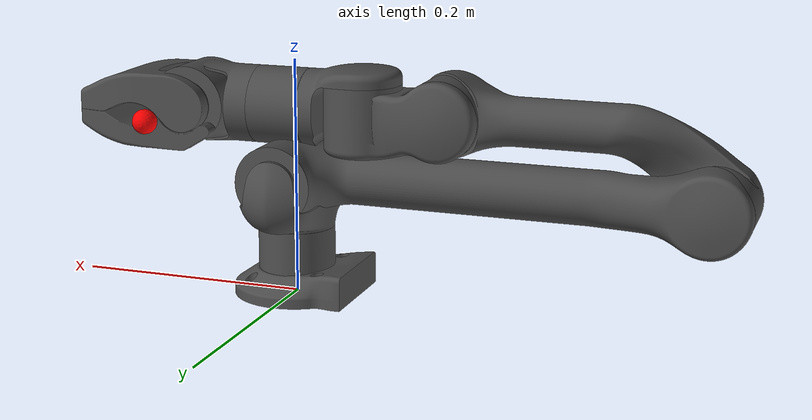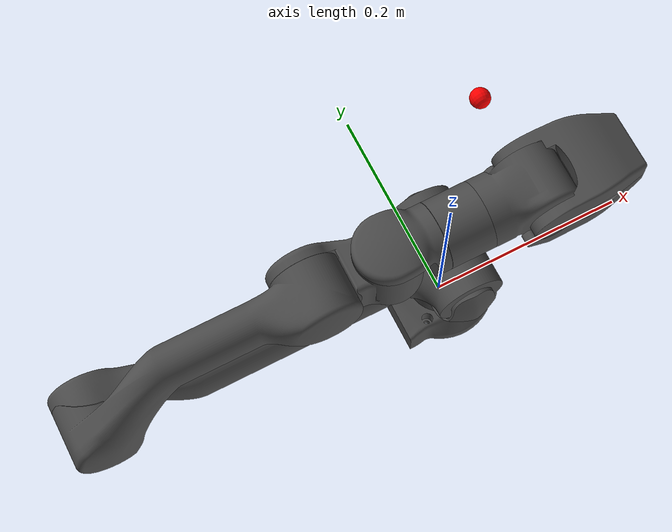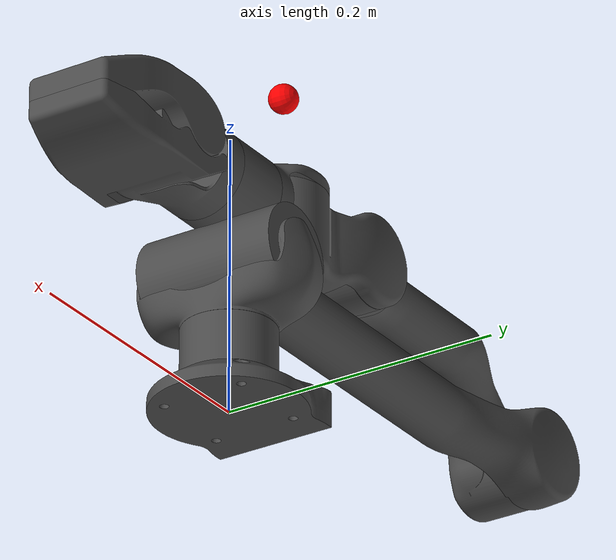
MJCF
<mujoco model="z1">
  <compiler angle="radian" autolimits="true"/>

  <option integrator="implicitfast"/>

  <asset>
    <mesh name="z1_Link00" content_type="model/stl" file="meshes/z1_Link00.STL"/>
    <mesh name="z1_Link01" content_type="model/stl" file="meshes/z1_Link01.STL"/>
    <mesh name="z1_Link02" content_type="model/stl" file="meshes/z1_Link02.STL"/>
    <mesh name="z1_Link03" content_type="model/stl" file="meshes/z1_Link03.STL"/>
    <mesh name="z1_Link04" content_type="model/stl" file="meshes/z1_Link04.STL"/>
    <mesh name="z1_Link05" content_type="model/stl" file="meshes/z1_Link05.STL"/>
    <mesh name="z1_Link06" content_type="model/stl" file="meshes/z1_Link06.STL"/>
    <mesh name="z1_GripperStator" content_type="model/stl" file="meshes/z1_GripperStator.STL"/>
    <mesh name="z1_GripperMover" content_type="model/stl" file="meshes/z1_GripperMover.STL"/>
  </asset>

  <worldbody>
    <geom pos="0 0 -0.0001" quat="1 0 0 0" type="mesh" rgba="0.3 0.3 0.3 1" name="z1_Link00" mesh="z1_Link00"/>
    <body name="link01" pos="0 0 0.0585">
      <inertial pos="2.47e-06 -0.00025198 0.0231717" quat="0.708578 0.705633 0.000281462 -0.000355927" mass="0.673326" diaginertia="0.00128328 0.000839362 0.000719308"/>
      <joint name="joint1" pos="0 0 0" axis="0 0 1" range="-2.61799 2.61799" actuatorfrcrange="-30 30" damping="1" frictionloss="1"/>
      <geom type="mesh" rgba="0.3 0.3 0.3 1" name="z1_Link01" mesh="z1_Link01"/>
      <body name="link02" pos="0 0 0.045">
        <inertial pos="-0.110126 0.00240029 0.00158266" quat="0.00748058 0.707092 -0.0114473 0.70699" mass="1.19132" diaginertia="0.0246612 0.0243113 0.00100468"/>
        <joint name="joint2" pos="0 0 0" axis="0 1 0" range="0 2.96706" actuatorfrcrange="-60 60" damping="2" frictionloss="2"/>
        <geom type="mesh" rgba="0.3 0.3 0.3 1" name="z1_Link02" mesh="z1_Link02"/>
        <body name="link03" pos="-0.35 0 0">
          <inertial pos="0.106092 -0.00541815 0.0347638" quat="0.540557 0.443575 0.426319 0.573839" mass="0.839409" diaginertia="0.00954365 0.00938711 0.000558432"/>
          <joint name="joint3" pos="0 0 0" axis="0 1 0" range="-2.87979 0" actuatorfrcrange="-30 30" damping="1" frictionloss="1"/>
          <geom type="mesh" rgba="0.3 0.3 0.3 1" name="z1_Link03" mesh="z1_Link03"/>
          <body name="link04" pos="0.218 0 0.057">
            <inertial pos="0.0436668 0.00364738 -0.00170192" quat="0.0390835 0.726445 -0.0526787 0.684087" mass="0.564046" diaginertia="0.000981656 0.00094053 0.000302655"/>
            <joint name="joint4" pos="0 0 0" axis="0 1 0" range="-1.51844 1.51844" actuatorfrcrange="-30 30" damping="1" frictionloss="1"/>
            <geom type="mesh" rgba="0.3 0.3 0.3 1" name="z1_Link04" mesh="z1_Link04"/>
            <body name="link05" pos="0.07 0 0">
              <inertial pos="0.0312153 0 0.00646316" quat="0.462205 0.535209 0.53785 0.45895" mass="0.389385" diaginertia="0.000558961 0.000547317 0.000167332"/>
              <joint name="joint5" pos="0 0 0" axis="0 0 1" range="-1.3439 1.3439" actuatorfrcrange="-30 30" damping="1" frictionloss="1"/>
              <geom type="mesh" rgba="0.3 0.3 0.3 1" name="z1_Link05" mesh="z1_Link05"/>
              <body name="link06" pos="0.0492 0 0">
                <inertial pos="0.0413016 0.0312517 0.00710868" quat="0.646697 0.462142 -0.59325 0.127523" mass="0.814795" diaginertia="0.00143745 0.00122156 0.000766159"/>
                <joint name="joint6" pos="0 0 0" axis="1 0 0" range="-2.79253 2.79253" actuatorfrcrange="-30 30" damping="1" frictionloss="1"/>
                <geom type="mesh" rgba="0.3 0.3 0.3 1" name="z1_Link06" mesh="z1_Link06"/>
                <geom pos="0.051 0 0" quat="1 0 0 0" type="mesh" rgba="0.3 0.3 0.3 1" name="z1_GripperStator" mesh="z1_GripperStator"/>
                <body name="gripperMover" pos="0.1 0 0">
                  <inertial pos="0.0132063 0.00476708 0.00380534" quat="0.0631093 0.669067 -0.0615783 0.737953" mass="0.276213" diaginertia="0.000359044 0.000270888 0.000172378"/>
                  <joint name="jointGripper" pos="0 0 0" axis="0 1 0" range="-1.5708 0" actuatorfrcrange="-30 30" damping="1" frictionloss="1"/>
                  <geom type="mesh" rgba="0.3 0.3 0.3 1" name="z1_GripperMover" mesh="z1_GripperMover"/>
                  <site name="attachment_site" size="0.01" pos="0 0.1 0" quat="-1 1 1 1" rgba="1 0 0 1" group="1"/>
                </body>
              </body>
            </body>
          </body>
        </body>
      </body>
    </body>
  </worldbody>
    <contact>
        <exclude body1="link01" body2="link02"/>
        <exclude body1="link02" body2="link03"/>
        <exclude body1="link03" body2="link04"/>
        <exclude body1="link04" body2="link05"/>
        <exclude body1="link05" body2="link06"/>
        <exclude body1="link06" body2="gripperMover"/>
    </contact>
    <actuator>
        <position name="pos_j1" joint="joint1" kp="500" ctrlrange="-2.6 2.6"/>
        <position name="pos_j2" joint="joint2" kp="500" ctrlrange="0.0 2.9"/>
        <position name="pos_j3" joint="joint3" kp="500" ctrlrange="-2.8 0.0"/>
        <position name="pos_j4" joint="joint4" kp="500" ctrlrange="-1.5 1.5"/>
        <position name="pos_j5" joint="joint5" kp="500" ctrlrange="-1.3 1.3"/>
        <position name="pos_j6" joint="joint6" kp="500" ctrlrange="-2.7 2.7"/>
        <position name="pos_gripper" joint="jointGripper" kp="100" ctrlrange="-1.5 0.0"/>
    </actuator>
    <keyframe>
      <key name="home" qpos="0 0 0 0 0 0" ctrl="0 0 0 0 0 0"/>
    </keyframe>
</mujoco>
